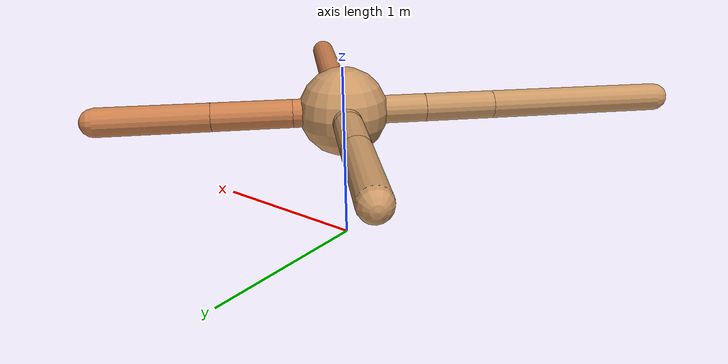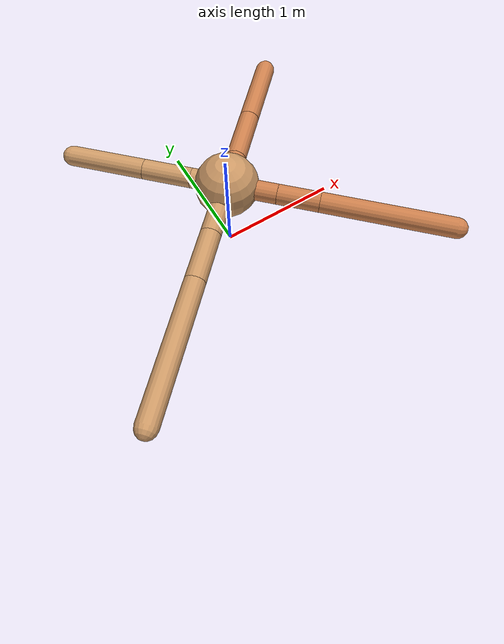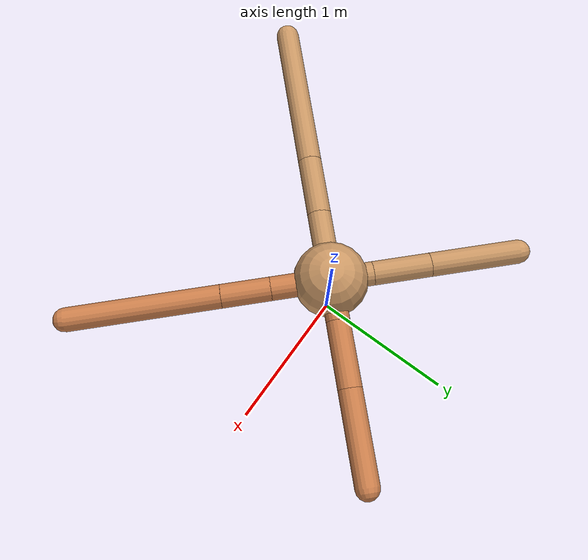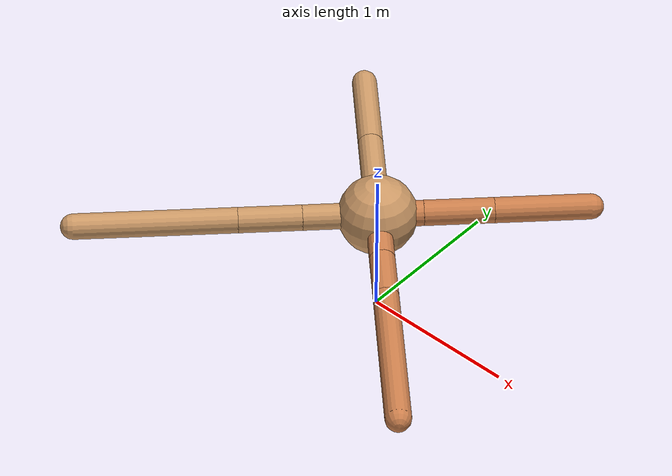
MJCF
<mujoco model="ant">
  <compiler angle="degree" coordinate="local" inertiafromgeom="true" />
  <option integrator="RK4" timestep="0.01" />
  <custom>
    <numeric data="0.0 0.0 0.55 1.0 0.0 0.0 0.0 0.0 1.0 0.0 -1.0 0.0 -1.0 0.0 1.0" name="init_qpos" />
  </custom>
  <default>
    <joint armature="1" damping="1" limited="true" />
    <geom conaffinity="0" condim="3" density="5.0" friction="1.5 0.1 0.1" margin="0.01" rgba="0.8 0.6 0.4 1" />
  </default>
  <worldbody>
    <body name="torso" pos="0 0 0.75">
      <geom name="torso_geom" pos="0 0 0" size="0.25" type="sphere" />

      <body name="front_left_leg" pos="0 0 0">
        <geom fromto="0.0 0.0 0.0 0.2 0.2 0.0" name="aux_1_geom" size="0.08" type="capsule" rgba=".8 .5 .3 1" />
        <body name="aux_1" pos="0.2 0.2 0.0">
          <joint axis="0 0 1" name="hip_1" pos="0.0 0.0 0.0" range="-40 40" type="hinge" />
          <geom fromto="0.0 0.0 0.0 0.30974579361304055 0.30974579361304055 0.0" name="left_leg_geom" size="0.08" type="capsule" rgba=".8 .5 .3 1" />
          <body pos="0.30974579361304055 0.30974579361304055 0.0" name="front_left_foot">
            <joint axis="-1 1 0" name="ankle_1" pos="0.0 0.0 0.0" range="30 100" type="hinge" />
            <geom fromto="0.0 0.0 0.0 0.4250140794059525 0.4250140794059525 0.0" name="left_ankle_geom" size="0.08" type="capsule" rgba=".8 .5 .3 1" />
          </body>
        </body>
      </body>
      <body name="front_right_leg" pos="0 0 0">
        <geom fromto="0.0 0.0 0.0 -0.2 0.2 0.0" name="aux_2_geom" size="0.08" type="capsule" />
        <body name="aux_2" pos="-0.2 0.2 0.0">
          <joint axis="0 0 1" name="hip_2" pos="0.0 0.0 0.0" range="-40 40" type="hinge" />
          <geom fromto="0.0 0.0 0.0 -0.2726000581477309 0.2726000581477309 0.0" name="right_leg_geom" size="0.08" type="capsule" />
          <body pos="-0.2726000581477309 0.2726000581477309 0.0" name="front_right_foot">
            <joint axis="1 1 0" name="ankle_2" pos="0.0 0.0 0.0" range="-100 -30" type="hinge" />
            <geom fromto="0.0 0.0 0.0 -0.4210717582585726 0.4210717582585726 0.0" name="right_ankle_geom" size="0.08" type="capsule" />
          </body>
        </body>
      </body>
      <body name="left_back_leg" pos="0 0 0">
        <geom fromto="0.0 0.0 0.0 -0.32879671495025836 -0.32879671495025836 0.0" name="aux_3_geom" size="0.08" type="capsule" />
        <body name="aux_3" pos="-0.32879671495025836 -0.32879671495025836 0.0">
          <joint axis="0 0 1" name="hip_3" pos="0.0 0.0 0.0" range="-40 40" type="hinge" />
          <geom fromto="0.0 0.0 0.0 -0.2807896935044736 -0.2807896935044736 0.0" name="back_leg_geom" size="0.08" type="capsule" />
          <body pos="-0.2807896935044736 -0.2807896935044736 0.0" name="left_back_foot">
            <joint axis="-1 1 0" name="ankle_3" pos="0.0 0.0 0.0" range="-100 -30" type="hinge" />
            <geom fromto="0.0 0.0 0.0 -0.7168133742767018 -0.7168133742767018 0.0" name="third_ankle_geom" size="0.08" type="capsule" />
          </body>
        </body>
      </body>
      <body name="right_back_leg" pos="0 0 0">
        <geom fromto="0.0 0.0 0.0 0.28198512429173545 -0.28198512429173545 0.0" name="aux_4_geom" size="0.08" type="capsule" rgba=".8 .5 .3 1" />
        <body name="aux_4" pos="0.28198512429173545 -0.28198512429173545 0.0">
          <joint axis="0 0 1" name="hip_4" pos="0.0 0.0 0.0" range="-40 40" type="hinge" />
          <geom fromto="0.0 0.0 0.0 0.23279034597839995 -0.23279034597839995 0.0" name="rightback_leg_geom" size="0.08" type="capsule" rgba=".8 .5 .3 1" />
          <body pos="0.23279034597839995 -0.23279034597839995 0.0" name="right_back_foot">
            <joint axis="1 1 0" name="ankle_4" pos="0.0 0.0 0.0" range="30 100" type="hinge" />
            <geom fromto="0.0 0.0 0.0 0.7187920443038918 -0.7187920443038918 0.0" name="fourth_ankle_geom" size="0.08" type="capsule" rgba=".8 .5 .3 1" />
          </body>
        </body>
      </body>
    </body>
  </worldbody>
  <actuator>
    <motor ctrllimited="true" ctrlrange="-1.0 1.0" joint="hip_4" gear="150" />
    <motor ctrllimited="true" ctrlrange="-1.0 1.0" joint="ankle_4" gear="150" />
    <motor ctrllimited="true" ctrlrange="-1.0 1.0" joint="hip_1" gear="150" />
    <motor ctrllimited="true" ctrlrange="-1.0 1.0" joint="ankle_1" gear="150" />
    <motor ctrllimited="true" ctrlrange="-1.0 1.0" joint="hip_2" gear="150" />
    <motor ctrllimited="true" ctrlrange="-1.0 1.0" joint="ankle_2" gear="150" />
    <motor ctrllimited="true" ctrlrange="-1.0 1.0" joint="hip_3" gear="150" />
    <motor ctrllimited="true" ctrlrange="-1.0 1.0" joint="ankle_3" gear="150" />
  </actuator>
</mujoco>
